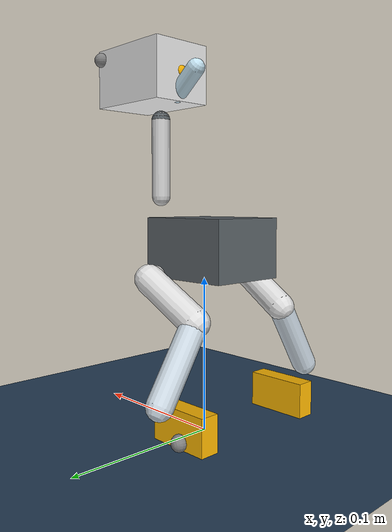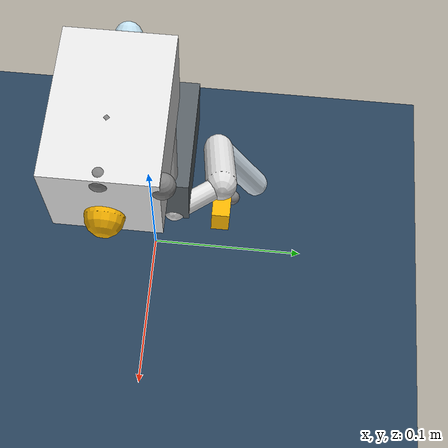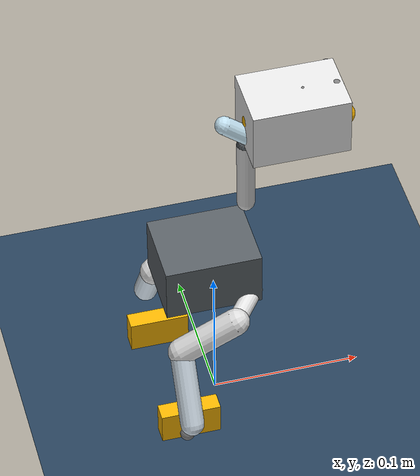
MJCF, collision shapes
<?xml version='1.0' encoding='utf-8'?>
<mujoco model="microduck">
  <compiler angle="radian" meshdir="assets" autolimits="true" />
  <option timestep="0.005" integrator="implicitfast" />
  <visual>
    <headlight diffuse="0.6 0.6 0.6" ambient="0.3 0.3 0.3" specular="0 0 0" />
    <rgba haze="0.15 0.25 0.35 1" />
  </visual>
  <asset>
    <texture type="skybox" builtin="gradient" rgb1="0.3 0.5 0.7" rgb2="0 0 0" width="512" height="512" />
    <texture type="2d" name="groundplane" builtin="checker" mark="edge" rgb1="0.2 0.3 0.4" rgb2="0.1 0.2 0.3" markrgb="0.8 0.8 0.8" width="300" height="300" />
    <material name="groundplane" texture="groundplane" texuniform="true" texrepeat="5 5" reflectance="0.2" />
    <mesh file="xl330.stl" />
    <mesh file="trunk_base.stl" />
    <mesh file="sole_right.stl" />
    <mesh file="power_support.stl" />
    <mesh file="bottom_head_shell.stl" />
    <mesh file="foot_right.stl" />
    <mesh file="foot_left.stl" />
    <mesh file="top_head_shell.stl" />
    <mesh file="yaw2roll.stl" />
    <mesh file="upper_leg_left.stl" />
    <mesh file="upper_leg_rigidity_plate.stl" />
    <mesh file="seeed_bearing__configuration_default.stl" />
    <mesh file="elec_rpi_robot_hat_pcb.stl" />
    <mesh file="yaw_roll_motion.stl" />
    <mesh file="np_f970.stl" />
    <mesh file="ankle_left.stl" />
    <mesh file="neck.stl" />
    <mesh file="lens.stl" />
    <mesh file="sole_left.stl" />
    <mesh file="m12_lens_holder.stl" />
    <mesh file="leg.stl" />
    <mesh file="speaker.stl" />
    <mesh file="neck_pitch.stl" />
    <mesh file="pcb__raspberry_pi_zero_2_w.stl" />
    <mesh file="left_shell.stl" />
    <mesh file="soft_mouth_top.stl" />
    <mesh file="hip_l.stl" />
    <mesh file="bearing_roll.stl" />
    <mesh file="motor_support.stl" />
    <mesh file="upper_leg_right.stl" />
    <mesh file="face_part.stl" />
    <mesh file="noenoeil.stl" />
    <mesh file="jaw.stl" />
    <mesh file="jaw_soft.stl" />
    <mesh file="right_shell.stl" />
    <mesh file="seeed_bearing__configuration__22x16x4.stl" />
    <mesh file="banana_pcb_locker.stl" />
    <mesh file="ankle_right.stl" />
    <material name="seeed_bearing__configuration__22x16x4_material" rgba="0.713725 0.760784 0.8 1" />
    <material name="right_shell_material" rgba="0.8 0.8 0.8 1" />
    <material name="banana_pcb_locker_material" rgba="0.647059 0.647059 0.647059 1" />
    <material name="trunk_base_material" rgba="0.34902 0.376471 0.4 1" />
    <material name="xl330_material" rgba="0.286275 0.286275 0.286275 1" />
    <material name="power_support_material" rgba="0.901961 0.901961 0.901961 1" />
    <material name="np_f970_material" rgba="0.901961 0.901961 0.901961 1" />
    <material name="left_shell_material" rgba="0.8 0.8 0.8 1" />
    <material name="yaw2roll_material" rgba="0.647059 0.647059 0.647059 1" />
    <material name="bearing_roll_material" rgba="0.262745 0.282353 0.301961 1" />
    <material name="hip_l_material" rgba="0.901961 0.901961 0.901961 1" />
    <material name="upper_leg_left_material" rgba="0.866667 0.866667 0.866667 1" />
    <material name="upper_leg_rigidity_plate_material" rgba="0.537255 0.854902 0.827451 1" />
    <material name="leg_material" rgba="0.811765 0.858824 0.898039 1" />
    <material name="sole_left_material" rgba="0.537255 0.854902 0.827451 1" />
    <material name="foot_left_material" rgba="0.980392 0.713725 0.00392157 1" />
    <material name="seeed_bearing__configuration_default_material" rgba="0.713725 0.760784 0.8 1" />
    <material name="ankle_left_material" rgba="0.980392 0.713725 0.00392157 1" />
    <material name="neck_material" rgba="0.8 0.8 0.8 1" />
    <material name="neck_pitch_material" rgba="0.34902 0.376471 0.4 1" />
    <material name="yaw_roll_motion_material" rgba="0.768627 0.886275 0.952941 1" />
    <material name="lens_material" rgba="0.262745 0.282353 0.301961 1" />
    <material name="face_part_material" rgba="0.34902 0.376471 0.4 1" />
    <material name="jaw_soft_material" rgba="0.85098 0.756863 0.866667 1" />
    <material name="motor_support_material" rgba="0.262745 0.282353 0.301961 1" />
    <material name="top_head_shell_material" rgba="0.901961 0.901961 0.901961 1" />
    <material name="elec_rpi_robot_hat_pcb_material" rgba="0.313725 0.486275 0.411765 1" />
    <material name="soft_mouth_top_material" rgba="0.85098 0.756863 0.866667 1" />
    <material name="noenoeil_material" rgba="0.262745 0.282353 0.301961 1" />
    <material name="jaw_material" rgba="0.980392 0.713725 0.00392157 1" />
    <material name="bottom_head_shell_material" rgba="0.980392 0.713725 0.00392157 1" />
    <material name="m12_lens_holder_material" rgba="0.262745 0.282353 0.301961 1" />
    <material name="pcb__raspberry_pi_zero_2_w_material" rgba="0.498039 0.498039 0.498039 1" />
    <material name="speaker_material" rgba="0.294118 0.290196 0.290196 1" />
    <material name="upper_leg_right_material" rgba="0.866667 0.866667 0.866667 1" />
    <material name="ankle_right_material" rgba="0.980392 0.713725 0.00392157 1" />
    <material name="sole_right_material" rgba="0.537255 0.854902 0.827451 1" />
    <material name="foot_right_material" rgba="0.980392 0.713725 0.00392157 1" />
  </asset>
  <default>
    <default class="microduck">
      <joint frictionloss="0.1" armature="0.005" />
      <default class="servo">
        <joint damping="0.053" frictionloss="0.0048" armature="0.0018" />
        <position kp="0.55" kv="0.0" forcerange="-0.96 0.96" ctrlrange="-10.0 10.0" />
      </default>
      <default class="link">
        <geom contype="0" conaffinity="0" />
      </default>
      <default class="visual">
        <geom contype="0" conaffinity="0" group="2" />
      </default>
      <default class="foot">
        <geom type="box" rgba="0.98 0.71 0.004 1" friction="0.9 0.01 0.0001" condim="4" />
      </default>
    </default>
  </default>
  <worldbody>
    <light pos="0 0 3.5" dir="0 0 -1" directional="true" />
    <geom name="floor" type="plane" size="0 0 0.05" pos="0 0 0" material="groundplane" />
    <body name="trunk_base" pos="0 0 0.12" childclass="microduck">
      <freejoint name="trunk_base_freejoint" />
      <inertial pos="-0.0226 0 0.0028" mass="0.199224" diaginertia="0.000124 0.000146 0.000115" />
      <geom class="link" type="box" size="0.032 0.026 0.019" pos="-0.006 0 0" rgba="0.35 0.38 0.4 1" />
      <site name="imu" pos="-0.021 0 -0.0147" />
      <body name="yaw2roll" pos="0.006 0.0175 -0.005" quat="0 -0.707107 -0.707107 0">
        <joint name="left_hip_yaw" axis="0 0 1" type="hinge" range="-0.4363323 0.5235988" class="servo" />
        <inertial pos="0 0.001 0.0169" mass="0.023041" diaginertia="4.196e-06 3.418e-06 2.327e-06" />
        <geom class="link" type="sphere" size="0.007" rgba="0.65 0.65 0.65 1" />
        <geom class="link" type="capsule" fromto="0 0 0 0 0.0165 0.0125" size="0.005" rgba="0.65 0.65 0.65 1" />
        <body name="hip_l" pos="0 0.0165 0.0125" quat="0.707107 -0.707107 0 0">
          <joint name="left_hip_roll" axis="0 0 1" type="hinge" range="-0.3839724 0.3839724" class="servo" />
          <inertial pos="0.0148 0 -0.0083" mass="0.006189" diaginertia="8.606e-07 1.158e-06 6.516e-07" />
          <geom class="link" type="capsule" fromto="0 0 0 0.025 0 -0.0185" size="0.006" rgba="0.9 0.9 0.9 1" />
          <body name="upper_leg_left" pos="0.025 0 -0.0185" quat="0.5 -0.5 0.5 -0.5">
            <joint name="left_hip_pitch" axis="0 0 1" type="hinge" range="-1.5707963 1.5707963" class="servo" />
            <inertial pos="0.0068 0.0229 0.0135" mass="0.048207" diaginertia="1.688e-05 1.037e-05 1.983e-05" />
            <geom class="link" type="capsule" fromto="0 0 0 0.022 0.0357771 -0.004" size="0.009" rgba="0.87 0.87 0.87 1" />
            <body name="leg" pos="0.022 0.0357771 -0.004" quat="0 0.707107 0.707107 0">
              <joint name="left_knee" axis="0 0 1" type="hinge" range="-1.5707963 1.5707963" class="servo" />
              <inertial pos="0 0.0319 -0.0095" mass="0.021584" diaginertia="5.251e-06 2.155e-06 4.339e-06" />
              <geom class="link" type="capsule" fromto="0 0 0 0 0.042 -0.026" size="0.008" rgba="0.81 0.86 0.9 1" />
              <body name="ankle_left" pos="0 0.042 -0.026" quat="0 1 0 0">
                <joint name="left_ankle" axis="0 0 1" type="hinge" range="-1.5707963 1.5707963" class="servo" />
                <inertial pos="-0.0062 -0.0137 -0.0157" mass="0.030025" diaginertia="5.915e-06 1.115e-05 7.740e-06" />
                <geom class="foot" size="0.02 0.011 0.006" pos="-0.003 -0.017 -0.021" />
                <geom class="foot" name="left_foot_collision" size="0.02 0.011 0.006" pos="-0.003 -0.017 -0.021" />
                <site name="left_foot" pos="0 -0.0238146 -0.0140852" />
                <geom type="mesh" class="visual" pos="-0.022 0.00622291 -0.0647" quat="0.5 -0.5 -0.5 -0.5" mesh="sole_left" material="sole_left_material" />
                <geom type="mesh" class="visual" pos="-0.022 0.00622291 -0.0647" quat="0.5 -0.5 -0.5 -0.5" mesh="foot_left" material="foot_left_material" />
                <geom type="mesh" class="visual" pos="0 0 -0.0322" quat="0 0 -0 1" mesh="seeed_bearing__configuration_default" material="seeed_bearing__configuration_default_material" />
                <geom type="mesh" class="visual" pos="-0.022 0.00622291 -0.0647" quat="0.5 -0.5 -0.5 -0.5" mesh="ankle_left" material="ankle_left_material" />
              </body>
              <geom type="mesh" class="visual" pos="-0.022 0.0357771 0.0385" quat="0.5 0.5 0.5 -0.5" mesh="leg" material="leg_material" />
              <geom type="mesh" class="visual" pos="0 0.042 -0.0115" quat="0.5 -0.5 -0.5 -0.5" mesh="xl330" material="xl330_material" />
            </body>
            <geom type="mesh" class="visual" pos="-0 -0 -0.0425" quat="0.5 -0.5 -0.5 -0.5" mesh="upper_leg_left" material="upper_leg_left_material" />
            <geom type="mesh" class="visual" pos="0.022 0.0357771 0.0125" quat="0 -0.707107 -0 -0.707107" mesh="xl330" material="xl330_material" />
            <geom type="mesh" class="visual" pos="0 -0 -0.0425" quat="0.5 -0.5 -0.5 -0.5" mesh="upper_leg_rigidity_plate" material="upper_leg_rigidity_plate_material" />
            <geom type="mesh" class="visual" pos="0.022 0.0357771 -0.004" quat="0 0 0 1" mesh="seeed_bearing__configuration__22x16x4" material="seeed_bearing__configuration__22x16x4_material" />
            <geom type="mesh" class="visual" pos="-0 -0 0.0125" quat="0.5 0.5 -0.5 0.5" mesh="xl330" material="xl330_material" />
          </body>
          <geom type="mesh" class="visual" pos="0.021 0 -0.0185" quat="0.5 0.5 0.5 0.5" mesh="seeed_bearing__configuration__22x16x4" material="seeed_bearing__configuration__22x16x4_material" />
          <geom type="mesh" class="visual" pos="-0.0175 0 -0.0185" quat="0.707107 -0.707107 0 -0" mesh="hip_l" material="hip_l_material" />
        </body>
        <geom type="mesh" class="visual" pos="-0.0175 -0.002 0.0125" quat="0 1 0 0" mesh="yaw2roll" material="yaw2roll_material" />
        <geom type="mesh" class="visual" pos="-0 0 0.0125" quat="0 -0.707107 0.707107 -0" mesh="xl330" material="xl330_material" />
        <geom type="mesh" class="visual" pos="-0 0.0165 0.0125" quat="0.5 0.5 0.5 -0.5" mesh="seeed_bearing__configuration__22x16x4" material="seeed_bearing__configuration__22x16x4_material" />
        <geom type="mesh" class="visual" pos="-0.0175 -0.002 0.0125" quat="0 -1 -0 -0" mesh="bearing_roll" material="bearing_roll_material" />
      </body>
      <body name="bearing_roll" pos="0.006 -0.0175 -0.005" quat="0 0.707107 0.707107 0">
        <joint name="right_hip_yaw" axis="0 0 1" type="hinge" range="-0.5235988 0.4363323" class="servo" />
        <inertial pos="0 0.001 0.0169" mass="0.023041" diaginertia="4.196e-06 3.418e-06 2.327e-06" />
        <geom class="link" type="sphere" size="0.007" rgba="0.65 0.65 0.65 1" />
        <geom class="link" type="capsule" fromto="0 0 0 0 0.0165 0.0125" size="0.005" rgba="0.65 0.65 0.65 1" />
        <body name="hip_l_2" pos="0 0.0165 0.0125" quat="0 0 0.707107 0.707107">
          <joint name="right_hip_roll" axis="0 0 1" type="hinge" range="-0.3839724 0.3839724" class="servo" />
          <inertial pos="0.0148 0 -0.0083" mass="0.006189" diaginertia="8.606e-07 1.158e-06 6.516e-07" />
          <geom class="link" type="capsule" fromto="0 0 0 0.025 0 -0.0185" size="0.006" rgba="0.9 0.9 0.9 1" />
          <body name="upper_leg_right" pos="0.025 0 -0.0185" quat="0.5 -0.5 0.5 -0.5">
            <joint name="right_hip_pitch" axis="0 0 1" type="hinge" range="-1.5707963 1.5707963" class="servo" />
            <inertial pos="-0.0068 0.0229 0.0135" mass="0.048207" diaginertia="1.688e-05 1.037e-05 1.983e-05" />
            <geom class="link" type="capsule" fromto="0 0 0 -0.022 0.0357771 -0.004" size="0.009" rgba="0.87 0.87 0.87 1" />
            <body name="leg_2" pos="-0.022 0.0357771 -0.004" quat="0 1 0 0">
              <joint name="right_knee" axis="0 0 1" type="hinge" range="-1.5707963 1.5707963" class="servo" />
              <inertial pos="-0.0319 0 -0.0095" mass="0.021584" diaginertia="2.155e-06 5.251e-06 4.339e-06" />
              <geom class="link" type="capsule" fromto="0 0 0 -0.042 0 -0.026" size="0.008" rgba="0.81 0.86 0.9 1" />
              <body name="ankle_right" pos="-0.042 0 -0.026" quat="0 -0.707107 -0.707107 0">
                <joint name="right_ankle" axis="0 0 1" type="hinge" range="-1.5707963 1.5707963" class="servo" />
                <inertial pos="0.0062 -0.0137 -0.0157" mass="0.030025" diaginertia="5.915e-06 1.115e-05 7.740e-06" />
                <geom class="foot" size="0.02 0.011 0.006" pos="0.003 -0.017 -0.021" />
                <geom class="foot" name="right_foot_collision" size="0.02 0.011 0.006" pos="0.003 -0.017 -0.021" />
                <site name="right_foot" pos="0 -0.0238146 -0.0140852" />
                <geom type="mesh" class="visual" pos="0.022 0.00622291 -0.0647" quat="0.5 -0.5 0.5 0.5" mesh="ankle_right" material="ankle_right_material" />
                <geom type="mesh" class="visual" pos="0.022 0.00622291 -0.0647" quat="0.5 -0.5 0.5 0.5" mesh="sole_right" material="sole_right_material" />
                <geom type="mesh" class="visual" pos="-0 0 -0.0292" quat="0 1 -0 -0" mesh="seeed_bearing__configuration_default" material="seeed_bearing__configuration_default_material" />
                <geom type="mesh" class="visual" pos="0.022 0.00622291 -0.0647" quat="0.5 -0.5 0.5 0.5" mesh="foot_right" material="foot_right_material" />
              </body>
              <geom type="mesh" class="visual" pos="-0.042 0 -0.0115" quat="0.707107 -0 -0.707107 -0" mesh="xl330" material="xl330_material" />
              <geom type="mesh" class="visual" pos="-0.0357771 -0.022 0.0385" quat="0.707107 0 0.707107 -0" mesh="leg" material="leg_material" />
            </body>
            <geom type="mesh" class="visual" pos="-0.022 0.0357771 0.0125" quat="0.707107 -0 -0.707107 -0" mesh="xl330" material="xl330_material" />
            <geom type="mesh" class="visual" pos="-0.022 0.0357771 0" quat="0 1 -0 -0" mesh="seeed_bearing__configuration__22x16x4" material="seeed_bearing__configuration__22x16x4_material" />
            <geom type="mesh" class="visual" pos="0 0 0.0435" quat="0.5 -0.5 0.5 0.5" mesh="upper_leg_rigidity_plate" material="upper_leg_rigidity_plate_material" />
            <geom type="mesh" class="visual" pos="-0 0 -0.0425" quat="0.5 -0.5 0.5 0.5" mesh="upper_leg_right" material="upper_leg_right_material" />
            <geom type="mesh" class="visual" pos="0 0 0.0125" quat="0.5 0.5 -0.5 0.5" mesh="xl330" material="xl330_material" />
          </body>
          <geom type="mesh" class="visual" pos="-0.0175 0 -0.0185" quat="0.707107 -0.707107 -0 -0" mesh="hip_l" material="hip_l_material" />
          <geom type="mesh" class="visual" pos="0.025 0 -0.0185" quat="0.5 0.5 -0.5 -0.5" mesh="seeed_bearing__configuration__22x16x4" material="seeed_bearing__configuration__22x16x4_material" />
        </body>
        <geom type="mesh" class="visual" pos="-0.0175 -0.002 0.0125" quat="0 1 0 0" mesh="yaw2roll" material="yaw2roll_material" />
        <geom type="mesh" class="visual" pos="-0 0 0.0125" quat="0 -0.707107 0.707107 -0" mesh="xl330" material="xl330_material" />
        <geom type="mesh" class="visual" pos="-0.0175 -0.002 0.0125" quat="0 -1 -0 -0" mesh="bearing_roll" material="bearing_roll_material" />
        <geom type="mesh" class="visual" pos="-0 0.0165 0.0125" quat="0.5 0.5 0.5 -0.5" mesh="seeed_bearing__configuration__22x16x4" material="seeed_bearing__configuration__22x16x4_material" />
      </body>
      <body name="neck" pos="0.026 0.0145 0.0324215" quat="0 0 0.707107 -0.707107">
        <joint name="neck_pitch" axis="0 0 1" type="hinge" range="-1.5707963 1.0471976" class="servo" />
        <inertial pos="0 -0.025 0.0142" mass="0.036841" diaginertia="1.729e-05 3.127e-06 1.637e-05" />
        <geom class="link" type="capsule" fromto="0 0 0 0 -0.05 0" size="0.006" rgba="0.8 0.8 0.8 1" />
        <body name="neck_pitch_link" pos="0 -0.05 0" quat="0 1 0 0">
          <joint name="head_pitch" axis="0 0 1" type="hinge" range="-1.5707963 1.5707963" class="servo" />
          <inertial pos="0 0.0117 -0.0145" mass="0.00572" diaginertia="1.092e-06 9.669e-07 5.121e-07" />
          <geom class="link" type="sphere" size="0.006" rgba="0.35 0.38 0.4 1" />
          <body name="yaw_roll_motion" pos="0 0.0186931 -0.0145" quat="0 0 -0.707107 -0.707107">
            <joint name="head_yaw" axis="0 0 1" type="hinge" range="-2.9670597 2.9670597" class="servo" />
            <inertial pos="-0.0002 -0.005 0.0178" mass="0.0486" diaginertia="6.979e-06 8.103e-06 9.579e-06" />
            <geom class="link" type="capsule" fromto="0 0 0 -0.0179 0 0.0145" size="0.006" rgba="0.77 0.89 0.95 1" />
            <body name="jaw_soft" pos="-0.0179 0 0.0145" quat="0.707107 0 -0.707107 0">
              <joint name="head_roll" axis="0 0 1" type="hinge" range="-0.4363323 0.4363323" class="servo" />
              <inertial pos="0.0046 0.0012 -0.0325" mass="0.188766" diaginertia="0.000321 0.000254 0.00015" />
              <geom class="link" type="box" size="0.02 0.022 0.032" pos="0 0 -0.045" rgba="0.9 0.9 0.9 1" />
              <geom class="link" type="capsule" fromto="0 0 -0.02 -0.0081 0 -0.0777" size="0.008" rgba="0.98 0.71 0.004 1" />
              <site name="head_camera" pos="0.0155 0 -0.0733" quat="0.707107 0 0.707107 0" />
              <camera name="head_camera" pos="0.0155 0 -0.0733" quat="0 0 -1 0" />
              <site name="tof" pos="0.0135 0.0224 -0.0733" quat="0.707107 0 0.707107 0" />
              <site name="head_imu" pos="0.0152 0 -0.0511" />
              <site name="mouth_tip" pos="-0.0081 0 -0.0777" />
              <geom type="mesh" class="visual" pos="0.0155 -9.13778e-05 -0.05548" quat="0.5 -0.5 0.5 -0.5" mesh="lens" material="lens_material" />
              <geom type="mesh" class="visual" pos="-0.0045 -9.13778e-05 -0.0178" quat="0.5 0.5 0.5 0.5" mesh="face_part" material="face_part_material" />
              <geom type="mesh" class="visual" pos="0.003 0.0255 -0.018" quat="0.707107 0 -0 -0.707107" mesh="xl330" material="xl330_material" />
              <geom type="mesh" class="visual" pos="-0.0046 0 -0.0179996" quat="0.5 0.5 0.5 0.5" mesh="jaw_soft" material="jaw_soft_material" />
              <geom type="mesh" class="visual" pos="-0.0045 0 -0.018" quat="0.5 0.5 0.5 0.5" mesh="motor_support" material="motor_support_material" />
              <geom type="mesh" class="visual" pos="-0.0045 -0 -0.018" quat="0.5 0.5 0.5 0.5" mesh="top_head_shell" material="top_head_shell_material" />
              <geom type="mesh" class="visual" pos="0 0 0.0145" quat="0.5 -0.5 -0.5 -0.5" mesh="xl330" material="xl330_material" />
              <geom type="mesh" class="visual" pos="0.0032 -0.04 -0.018" quat="0.5 -0.5 0.5 0.5" mesh="seeed_bearing__configuration_default" material="seeed_bearing__configuration_default_material" />
              <geom type="mesh" class="visual" pos="0.02694 0.0289936 -0.0519" quat="0.707107 0 0 -0.707107" mesh="elec_rpi_robot_hat_pcb" material="elec_rpi_robot_hat_pcb_material" />
              <geom type="mesh" class="visual" pos="-0.00420071 1.7776e-08 -0.0180814" quat="0.5 0.5 0.5 0.5" mesh="soft_mouth_top" material="soft_mouth_top_material" />
              <geom type="mesh" class="visual" pos="-0.0045 -9.13778e-05 -0.0178" quat="0.5 0.5 0.5 0.5" mesh="noenoeil" material="noenoeil_material" />
              <geom type="mesh" class="visual" pos="-0.0045 0 -0.018" quat="0.5 0.5 0.5 0.5" mesh="jaw" material="jaw_material" />
              <geom type="mesh" class="visual" pos="-0.0043 -0 -0.018" quat="0.5 0.5 0.5 0.5" mesh="bottom_head_shell" material="bottom_head_shell_material" />
              <geom type="mesh" class="visual" pos="0.0155 -9.13778e-05 -0.05558" quat="0.5 -0.5 0.5 -0.5" mesh="m12_lens_holder" material="m12_lens_holder_material" />
              <geom type="mesh" class="visual" pos="0.015435 -1.13778e-05 -0.06001" quat="0.5 -0.5 -0.5 0.5" mesh="pcb__raspberry_pi_zero_2_w" material="pcb__raspberry_pi_zero_2_w_material" />
              <geom type="mesh" class="visual" pos="0.01 -0.016786 0.0260226" quat="0.5 0.5 0.5 0.5" mesh="speaker" material="speaker_material" />
            </body>
            <geom type="mesh" class="visual" pos="0 0 0.01" quat="0.707107 0 -0 0.707107" mesh="yaw_roll_motion" material="yaw_roll_motion_material" />
            <geom type="mesh" class="visual" pos="0 0 0.0145" quat="0.5 -0.5 -0.5 -0.5" mesh="xl330" material="xl330_material" />
            <geom type="mesh" class="visual" pos="-0.016 0 0.0145" quat="0.707107 -0 -0.707107 -0" mesh="seeed_bearing__configuration__22x16x4" material="seeed_bearing__configuration__22x16x4_material" />
            <geom type="mesh" class="visual" pos="0.018 0 0.0145" quat="0.707107 -0 -0.707107 -0" mesh="seeed_bearing__configuration__22x16x4" material="seeed_bearing__configuration__22x16x4_material" />
          </body>
          <geom type="mesh" class="visual" pos="-0 0.0287931 -0.0145" quat="0.5 -0.5 -0.5 -0.5" mesh="neck_pitch" material="neck_pitch_material" />
          <geom type="mesh" class="visual" pos="-0 0.0207931 -0.0145" quat="0.707107 0.707107 0 0" mesh="seeed_bearing__configuration__22x16x4" material="seeed_bearing__configuration__22x16x4_material" />
        </body>
        <geom type="mesh" class="visual" pos="0.022 0.05 0.028" quat="0.5 0.5 0.5 -0.5" mesh="neck" material="neck_material" />
        <geom type="mesh" class="visual" pos="0 0 0.0145" quat="0.5 -0.5 -0.5 -0.5" mesh="xl330" material="xl330_material" />
        <geom type="mesh" class="visual" pos="0 -0.05 0.0145" quat="0.5 0.5 -0.5 0.5" mesh="xl330" material="xl330_material" />
        <geom type="mesh" class="visual" pos="0.022 0.05 0.003" quat="0.5 0.5 0.5 -0.5" mesh="neck" material="neck_material" />
      </body>
      <geom type="mesh" class="visual" pos="0.006 0.0175 -0.005" quat="1 -0 -0 0" mesh="seeed_bearing__configuration__22x16x4" material="seeed_bearing__configuration__22x16x4_material" />
      <geom type="mesh" class="visual" pos="0.004 -0.0005 -0.0175" quat="0.707107 -0 -0 0.707107" mesh="right_shell" material="right_shell_material" />
      <geom type="mesh" class="visual" pos="0.0042 -0 -0.0175215" quat="0.707107 -0 0 0.707107" mesh="banana_pcb_locker" material="banana_pcb_locker_material" />
      <geom type="mesh" class="visual" pos="0.004 -0 -0.0175" quat="0.707107 -0 -0 0.707107" mesh="trunk_base" material="trunk_base_material" />
      <geom type="mesh" class="visual" pos="0.006 0.0175 0.0115" quat="0 0.707107 -0 0.707107" mesh="xl330" material="xl330_material" />
      <geom type="mesh" class="visual" pos="0.004 -0 -0.0175215" quat="0.707107 -0 0 0.707107" mesh="power_support" material="power_support_material" />
      <geom type="mesh" class="visual" pos="-0.0359693 0 -0.00385049" quat="0.00617059 0.70708 -0.70708 -0.00617059" mesh="np_f970" material="np_f970_material" />
      <geom type="mesh" class="visual" pos="0.006 -0.0175 0.0115" quat="0 0.707107 -0 0.707107" mesh="xl330" material="xl330_material" />
      <geom type="mesh" class="visual" pos="0.004 -0 -0.0175785" quat="0.707107 0 -0 0.707107" mesh="left_shell" material="left_shell_material" />
      <geom type="mesh" class="visual" pos="0.006 -0.0175 -0.005" quat="1 -0 -0 0" mesh="seeed_bearing__configuration__22x16x4" material="seeed_bearing__configuration__22x16x4_material" />
    </body>
  </worldbody>
  <sensor>
    <framequat name="orientation" objtype="site" objname="imu" noise="0.001" />
    <gyro name="imu_ang_vel" site="imu" noise="0.005" />
    <velocimeter name="imu_lin_vel" site="imu" />
    <accelerometer name="imu_accel" site="imu" />
    <subtreeangmom name="root_angmom" body="trunk_base" />
  </sensor>
  <actuator>
    <position class="servo" name="left_hip_yaw" joint="left_hip_yaw" />
    <position class="servo" name="left_hip_roll" joint="left_hip_roll" />
    <position class="servo" name="left_hip_pitch" joint="left_hip_pitch" />
    <position class="servo" name="left_knee" joint="left_knee" />
    <position class="servo" name="left_ankle" joint="left_ankle" />
    <position class="servo" name="right_hip_yaw" joint="right_hip_yaw" />
    <position class="servo" name="right_hip_roll" joint="right_hip_roll" />
    <position class="servo" name="right_hip_pitch" joint="right_hip_pitch" />
    <position class="servo" name="right_knee" joint="right_knee" />
    <position class="servo" name="right_ankle" joint="right_ankle" />
    <position class="servo" name="neck_pitch" joint="neck_pitch" />
    <position class="servo" name="head_pitch" joint="head_pitch" />
    <position class="servo" name="head_yaw" joint="head_yaw" />
    <position class="servo" name="head_roll" joint="head_roll" />
  </actuator>
  <keyframe>
    <key name="STAND" qpos="0 0 0.12 1 0 0 0             0 -0.0872665 -0.457924 -0.004940 0.452984             0 0.0872665 0.457924 0.004940 -0.452984             0.3490659 0.3490659 0 0" ctrl="0 -0.0872665 -0.457924 -0.004940 0.452984             0 0.0872665 0.457924 0.004940 -0.452984             0.3490659 0.3490659 0 0" />
  </keyframe>
</mujoco>
